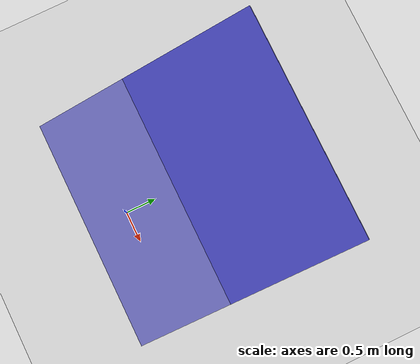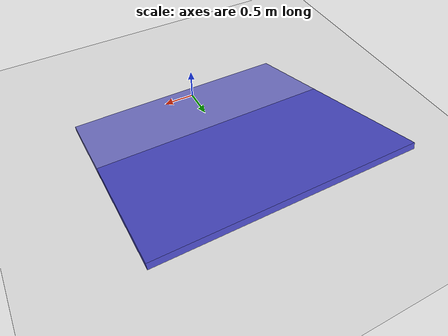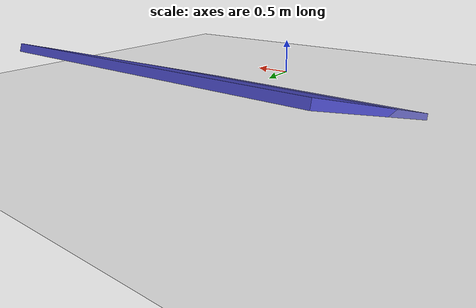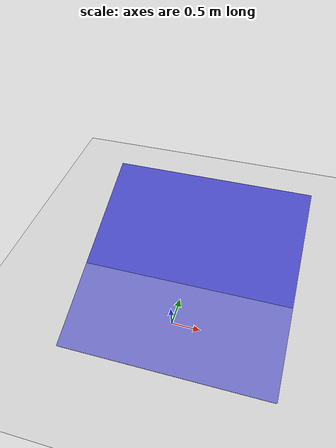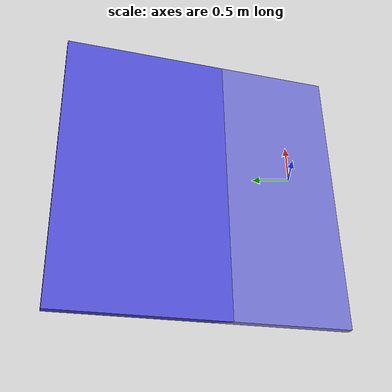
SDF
<?xml version="1.0" ?>
<sdf version="1.6">
  <world name="empty">

    <!-- ================= PHYSICS ================= -->
    <physics type="ode">
      <real_time_update_rate>1000</real_time_update_rate>
      <max_step_size>0.001</max_step_size>
      <ode>
        <solver>
          <type>quick</type>
          <iters>50</iters>
          <sor>1.4</sor>
        </solver>
        <constraints>
          <cfm>0.0</cfm>
          <erp>0.2</erp>
        </constraints>
      </ode>
    </physics>

    <!-- ================= LIGHT ================= -->
    <light name="sun" type="directional">
      <cast_shadows>true</cast_shadows>
      <pose>0 0 10 0 0 0</pose>
      <diffuse>0.8 0.8 0.8 1</diffuse>
      <specular>0.2 0.2 0.2 1</specular>
      <direction>-0.5 0.1 -0.9</direction>
    </light>

    <!-- ================= GROUND ================= -->
    <model name="ground_plane">
      <static>true</static>

      <link name="ground_link">
        <collision name="collision">
          <geometry>
            <plane>
              <normal>0 0 1</normal>
              <size>100 100</size>
            </plane>
          </geometry>
        </collision>

        <visual name="visual">
          <geometry>
            <plane>
              <normal>0 0 1</normal>
              <size>100 100</size>
            </plane>
          </geometry>
          <material>
            <ambient>0.8 0.8 0.8 1</ambient>
            <diffuse>0.8 0.8 0.8 1</diffuse>
          </material>
        </visual>
      </link>
    </model>

    <!-- ================= RAMP ================= -->
    <model name="ramp">
      <static>true</static>
      <pose>0 1.2 0.05 0.3 0 0</pose>

      <link name="ramp_link">
        <collision name="collision">
          <geometry>
            <box>
              <size>4 4 0.1</size>
            </box>
          </geometry>
        </collision>

        <visual name="visual">
          <geometry>
            <box>
              <size>4 4 0.1</size>
            </box>
          </geometry>
          <material>
            <ambient>0.3 0.3 0.8 1</ambient>
            <diffuse>0.3 0.3 0.8 1</diffuse>
          </material>
        </visual>
      </link>
    </model>

  </world>
</sdf>
